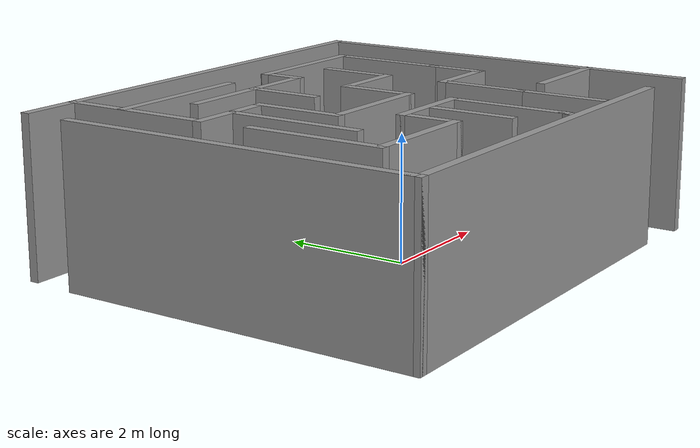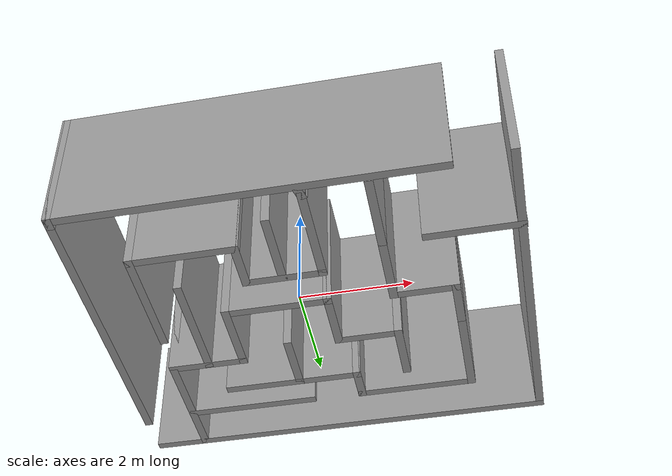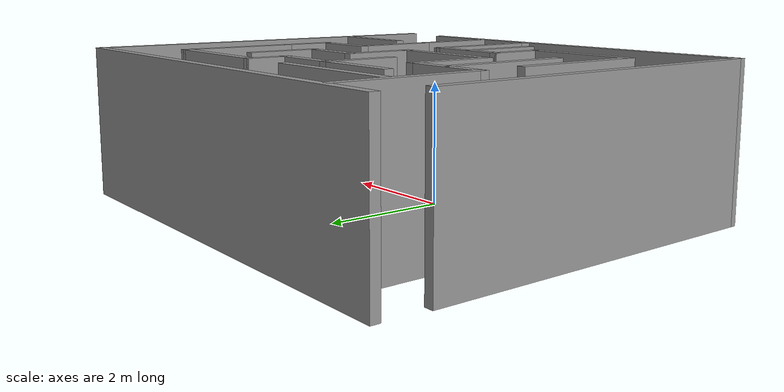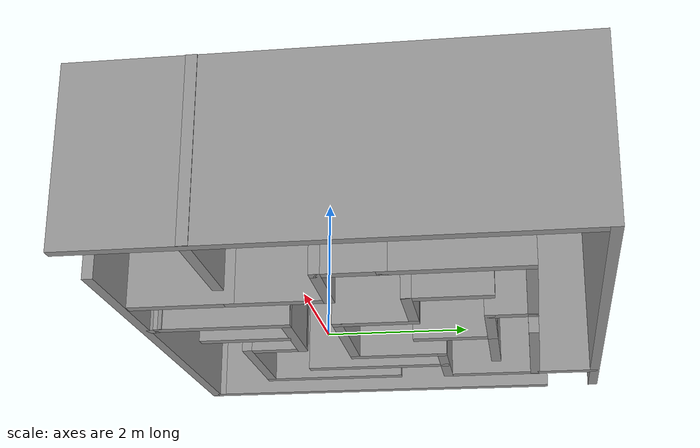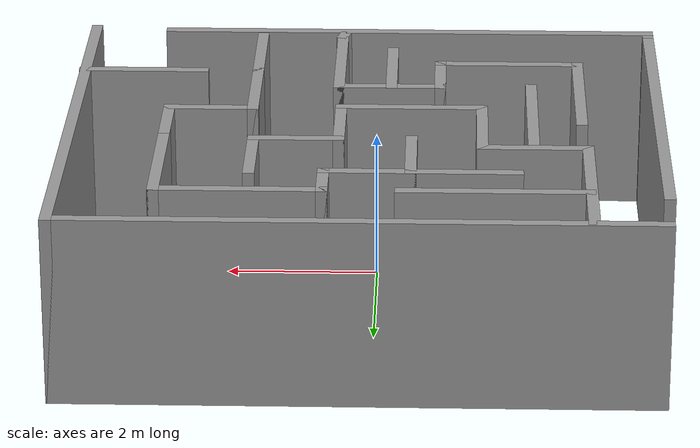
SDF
<?xml version='1.0'?>
<sdf version='1.6'>
  <model name='my_maze_1'>
    <pose frame=''>0.139591 0.622831 0 0 -0 0</pose>
    <link name='Wall_21'>
      <collision name='Wall_21_Collision'>
        <geometry>
          <box>
            <size>7.75 0.15 2.5</size>
          </box>
        </geometry>
        <pose frame=''>0 0 1.25 0 -0 0</pose>
      </collision>
      <visual name='Wall_21_Visual'>
        <pose frame=''>0 0 1.25 0 -0 0</pose>
        <geometry>
          <box>
            <size>7.75 0.15 2.5</size>
          </box>
        </geometry>
        <material>
          <script>
            <uri>file://media/materials/scripts/gazebo.material</uri>
            <name>Gazebo/Grey</name>
          </script>
          <ambient>1 1 1 1</ambient>
        </material>
        <meta>
          <layer>0</layer>
        </meta>
      </visual>
      <pose frame=''>0.020778 3.3 0 0 -0 0</pose>
    </link>
    <link name='Wall_22'>
      <collision name='Wall_22_Collision'>
        <geometry>
          <box>
            <size>6.75 0.15 2.5</size>
          </box>
        </geometry>
        <pose frame=''>0 0 1.25 0 -0 0</pose>
      </collision>
      <visual name='Wall_22_Visual'>
        <pose frame=''>0 0 1.25 0 -0 0</pose>
        <geometry>
          <box>
            <size>6.75 0.15 2.5</size>
          </box>
        </geometry>
        <material>
          <script>
            <uri>file://media/materials/scripts/gazebo.material</uri>
            <name>Gazebo/Grey</name>
          </script>
          <ambient>1 1 1 1</ambient>
        </material>
        <meta>
          <layer>0</layer>
        </meta>
      </visual>
      <pose frame=''>3.82078 0 0 0 -0 -1.5708</pose>
    </link>
    <link name='Wall_24'>
      <collision name='Wall_24_Collision'>
        <geometry>
          <box>
            <size>5.75 0.15 2.5</size>
          </box>
        </geometry>
        <pose frame=''>0 0 1.25 0 -0 0</pose>
      </collision>
      <visual name='Wall_24_Visual'>
        <pose frame=''>0 0 1.25 0 -0 0</pose>
        <geometry>
          <box>
            <size>5.75 0.15 2.5</size>
          </box>
        </geometry>
        <material>
          <script>
            <uri>file://media/materials/scripts/gazebo.material</uri>
            <name>Gazebo/Grey</name>
          </script>
          <ambient>1 1 1 1</ambient>
        </material>
        <meta>
          <layer>0</layer>
        </meta>
      </visual>
      <pose frame=''>-3.83242 -0.324606 0 0 -0 -1.5708</pose>
    </link>
    <link name='Wall_25'>
      <collision name='Wall_25_Collision'>
        <geometry>
          <box>
            <size>0.25 0.15 2.5</size>
          </box>
        </geometry>
        <pose frame=''>0 0 1.25 0 -0 0</pose>
      </collision>
      <visual name='Wall_25_Visual'>
        <pose frame=''>0 0 1.25 0 -0 0</pose>
        <geometry>
          <box>
            <size>0.25 0.15 2.5</size>
          </box>
        </geometry>
        <material>
          <script>
            <uri>file://media/materials/scripts/gazebo.material</uri>
            <name>Gazebo/Grey</name>
          </script>
          <ambient>1 1 1 1</ambient>
        </material>
        <meta>
          <layer>0</layer>
        </meta>
      </visual>
      <pose frame=''>-3.83242 -3.17461 0 0 -0 -1.5708</pose>
    </link>
    <link name='Wall_26'>
      <collision name='Wall_26_Collision'>
        <geometry>
          <box>
            <size>6.75 0.15 2.5</size>
          </box>
        </geometry>
        <pose frame=''>0 0 1.25 0 -0 0</pose>
      </collision>
      <visual name='Wall_26_Visual'>
        <pose frame=''>0 0 1.25 0 -0 0</pose>
        <geometry>
          <box>
            <size>6.75 0.15 2.5</size>
          </box>
        </geometry>
        <material>
          <script>
            <uri>file://media/materials/scripts/gazebo.material</uri>
            <name>Gazebo/Grey</name>
          </script>
          <ambient>1 1 1 1</ambient>
        </material>
        <meta>
          <layer>0</layer>
        </meta>
      </visual>
      <pose frame=''>-0.532423 -3.22461 0 0 -0 0</pose>
    </link>
    <link name='Wall_28'>
      <collision name='Wall_28_Collision'>
        <geometry>
          <box>
            <size>2.5 0.15 2.5</size>
          </box>
        </geometry>
        <pose frame=''>0 0 1.25 0 -0 0</pose>
      </collision>
      <visual name='Wall_28_Visual'>
        <pose frame=''>0 0 1.25 0 -0 0</pose>
        <geometry>
          <box>
            <size>2.5 0.15 2.5</size>
          </box>
        </geometry>
        <material>
          <script>
            <uri>file://media/materials/scripts/gazebo.material</uri>
            <name>Gazebo/Grey</name>
          </script>
          <ambient>1 1 1 1</ambient>
        </material>
        <meta>
          <layer>0</layer>
        </meta>
      </visual>
      <pose frame=''>-2.87481 2.0984 0 0 -0 -1.5708</pose>
    </link>
    <link name='Wall_29'>
      <collision name='Wall_29_Collision'>
        <geometry>
          <box>
            <size>1.5 0.15 2.5</size>
          </box>
        </geometry>
        <pose frame=''>0 0 1.25 0 -0 0</pose>
      </collision>
      <visual name='Wall_29_Visual'>
        <pose frame=''>0 0 1.25 0 -0 0</pose>
        <geometry>
          <box>
            <size>1.5 0.15 2.5</size>
          </box>
        </geometry>
        <material>
          <script>
            <uri>file://media/materials/scripts/gazebo.material</uri>
            <name>Gazebo/Grey</name>
          </script>
          <ambient>1 1 1 1</ambient>
        </material>
        <meta>
          <layer>0</layer>
        </meta>
      </visual>
      <pose frame=''>-2.19982 0.9234 0 0 -0 0</pose>
    </link>
    <link name='Wall_30'>
      <collision name='Wall_30_Collision'>
        <geometry>
          <box>
            <size>1.5 0.15 2.5</size>
          </box>
        </geometry>
        <pose frame=''>0 0 1.25 0 -0 0</pose>
      </collision>
      <visual name='Wall_30_Visual'>
        <pose frame=''>0 0 1.25 0 -0 0</pose>
        <geometry>
          <box>
            <size>1.5 0.15 2.5</size>
          </box>
        </geometry>
        <material>
          <script>
            <uri>file://media/materials/scripts/gazebo.material</uri>
            <name>Gazebo/Grey</name>
          </script>
          <ambient>1 1 1 1</ambient>
        </material>
        <meta>
          <layer>0</layer>
        </meta>
      </visual>
      <pose frame=''>-1.52482 0.2484 0 0 -0 -1.5708</pose>
    </link>
    <link name='Wall_31'>
      <collision name='Wall_31_Collision'>
        <geometry>
          <box>
            <size>2 0.15 2.5</size>
          </box>
        </geometry>
        <pose frame=''>0 0 1.25 0 -0 0</pose>
      </collision>
      <visual name='Wall_31_Visual'>
        <pose frame=''>0 0 1.25 0 -0 0</pose>
        <geometry>
          <box>
            <size>2 0.15 2.5</size>
          </box>
        </geometry>
        <material>
          <script>
            <uri>file://media/materials/scripts/gazebo.material</uri>
            <name>Gazebo/Grey</name>
          </script>
          <ambient>1 1 1 1</ambient>
        </material>
        <meta>
          <layer>0</layer>
        </meta>
      </visual>
      <pose frame=''>-0.599815 -0.4266 0 0 -0 0</pose>
    </link>
    <link name='Wall_32'>
      <collision name='Wall_32_Collision'>
        <geometry>
          <box>
            <size>1.25 0.15 2.5</size>
          </box>
        </geometry>
        <pose frame=''>0 0 1.25 0 -0 0</pose>
      </collision>
      <visual name='Wall_32_Visual'>
        <pose frame=''>0 0 1.25 0 -0 0</pose>
        <geometry>
          <box>
            <size>1.25 0.15 2.5</size>
          </box>
        </geometry>
        <material>
          <script>
            <uri>file://media/materials/scripts/gazebo.material</uri>
            <name>Gazebo/Grey</name>
          </script>
          <ambient>1 1 1 1</ambient>
        </material>
        <meta>
          <layer>0</layer>
        </meta>
      </visual>
      <pose frame=''>0.325185 0.1234 0 0 -0 1.5708</pose>
    </link>
    <link name='Wall_33'>
      <collision name='Wall_33_Collision'>
        <geometry>
          <box>
            <size>1.25 0.15 2.5</size>
          </box>
        </geometry>
        <pose frame=''>0 0 1.25 0 -0 0</pose>
      </collision>
      <visual name='Wall_33_Visual'>
        <pose frame=''>0 0 1.25 0 -0 0</pose>
        <geometry>
          <box>
            <size>1.25 0.15 2.5</size>
          </box>
        </geometry>
        <material>
          <script>
            <uri>file://media/materials/scripts/gazebo.material</uri>
            <name>Gazebo/Grey</name>
          </script>
          <ambient>1 1 1 1</ambient>
        </material>
        <meta>
          <layer>0</layer>
        </meta>
      </visual>
      <pose frame=''>0.875185 0.6734 0 0 -0 0</pose>
    </link>
    <link name='Wall_34'>
      <collision name='Wall_34_Collision'>
        <geometry>
          <box>
            <size>1.25 0.15 2.5</size>
          </box>
        </geometry>
        <pose frame=''>0 0 1.25 0 -0 0</pose>
      </collision>
      <visual name='Wall_34_Visual'>
        <pose frame=''>0 0 1.25 0 -0 0</pose>
        <geometry>
          <box>
            <size>1.25 0.15 2.5</size>
          </box>
        </geometry>
        <material>
          <script>
            <uri>file://media/materials/scripts/gazebo.material</uri>
            <name>Gazebo/Grey</name>
          </script>
          <ambient>1 1 1 1</ambient>
        </material>
        <meta>
          <layer>0</layer>
        </meta>
      </visual>
      <pose frame=''>1.42518 1.2234 0 0 -0 1.5708</pose>
    </link>
    <link name='Wall_36'>
      <collision name='Wall_36_Collision'>
        <geometry>
          <box>
            <size>2.25 0.15 2.5</size>
          </box>
        </geometry>
        <pose frame=''>0 0 1.25 0 -0 0</pose>
      </collision>
      <visual name='Wall_36_Visual'>
        <pose frame=''>0 0 1.25 0 -0 0</pose>
        <geometry>
          <box>
            <size>2.25 0.15 2.5</size>
          </box>
        </geometry>
        <material>
          <script>
            <uri>file://media/materials/scripts/gazebo.material</uri>
            <name>Gazebo/Grey</name>
          </script>
          <ambient>1 1 1 1</ambient>
        </material>
        <meta>
          <layer>0</layer>
        </meta>
      </visual>
      <pose frame=''>-2.82161 -0.968624 0 0 -0 -1.5708</pose>
    </link>
    <link name='Wall_37'>
      <collision name='Wall_37_Collision'>
        <geometry>
          <box>
            <size>2 0.15 2.5</size>
          </box>
        </geometry>
        <pose frame=''>0 0 1.25 0 -0 0</pose>
      </collision>
      <visual name='Wall_37_Visual'>
        <pose frame=''>0 0 1.25 0 -0 0</pose>
        <geometry>
          <box>
            <size>2 0.15 2.5</size>
          </box>
        </geometry>
        <material>
          <script>
            <uri>file://media/materials/scripts/gazebo.material</uri>
            <name>Gazebo/Grey</name>
          </script>
          <ambient>1 1 1 1</ambient>
        </material>
        <meta>
          <layer>0</layer>
        </meta>
      </visual>
      <pose frame=''>-1.89661 -2.01862 0 0 -0 0</pose>
    </link>
    <link name='Wall_38'>
      <collision name='Wall_38_Collision'>
        <geometry>
          <box>
            <size>1 0.15 2.5</size>
          </box>
        </geometry>
        <pose frame=''>0 0 1.25 0 -0 0</pose>
      </collision>
      <visual name='Wall_38_Visual'>
        <pose frame=''>0 0 1.25 0 -0 0</pose>
        <geometry>
          <box>
            <size>1 0.15 2.5</size>
          </box>
        </geometry>
        <material>
          <script>
            <uri>file://media/materials/scripts/gazebo.material</uri>
            <name>Gazebo/Grey</name>
          </script>
          <ambient>1 1 1 1</ambient>
        </material>
        <meta>
          <layer>0</layer>
        </meta>
      </visual>
      <pose frame=''>-0.971615 -1.59362 0 0 -0 1.5708</pose>
    </link>
    <link name='Wall_39'>
      <collision name='Wall_39_Collision'>
        <geometry>
          <box>
            <size>1.5 0.15 2.5</size>
          </box>
        </geometry>
        <pose frame=''>0 0 1.25 0 -0 0</pose>
      </collision>
      <visual name='Wall_39_Visual'>
        <pose frame=''>0 0 1.25 0 -0 0</pose>
        <geometry>
          <box>
            <size>1.5 0.15 2.5</size>
          </box>
        </geometry>
        <material>
          <script>
            <uri>file://media/materials/scripts/gazebo.material</uri>
            <name>Gazebo/Grey</name>
          </script>
          <ambient>1 1 1 1</ambient>
        </material>
        <meta>
          <layer>0</layer>
        </meta>
      </visual>
      <pose frame=''>-0.296615 -1.16862 0 0 -0 0</pose>
    </link>
    <link name='Wall_40'>
      <collision name='Wall_40_Collision'>
        <geometry>
          <box>
            <size>2 0.15 2.5</size>
          </box>
        </geometry>
        <pose frame=''>0 0 1.25 0 -0 0</pose>
      </collision>
      <visual name='Wall_40_Visual'>
        <pose frame=''>0 0 1.25 0 -0 0</pose>
        <geometry>
          <box>
            <size>2 0.15 2.5</size>
          </box>
        </geometry>
        <material>
          <script>
            <uri>file://media/materials/scripts/gazebo.material</uri>
            <name>Gazebo/Grey</name>
          </script>
          <ambient>1 1 1 1</ambient>
        </material>
        <meta>
          <layer>0</layer>
        </meta>
      </visual>
      <pose frame=''>0.378385 -2.09362 0 0 -0 -1.5708</pose>
    </link>
    <link name='Wall_41'>
      <collision name='Wall_41_Collision'>
        <geometry>
          <box>
            <size>0.25 0.15 2.5</size>
          </box>
        </geometry>
        <pose frame=''>0 0 1.25 0 -0 0</pose>
      </collision>
      <visual name='Wall_41_Visual'>
        <pose frame=''>0 0 1.25 0 -0 0</pose>
        <geometry>
          <box>
            <size>0.25 0.15 2.5</size>
          </box>
        </geometry>
        <material>
          <script>
            <uri>file://media/materials/scripts/gazebo.material</uri>
            <name>Gazebo/Grey</name>
          </script>
          <ambient>1 1 1 1</ambient>
        </material>
        <meta>
          <layer>0</layer>
        </meta>
      </visual>
      <pose frame=''>0.365444 -3.06692 0 0 -0 -1.8326</pose>
    </link>
    <link name='Wall_43'>
      <collision name='Wall_43_Collision'>
        <geometry>
          <box>
            <size>1.25 0.15 2.5</size>
          </box>
        </geometry>
        <pose frame=''>0 0 1.25 0 -0 0</pose>
      </collision>
      <visual name='Wall_43_Visual'>
        <pose frame=''>0 0 1.25 0 -0 0</pose>
        <geometry>
          <box>
            <size>1.25 0.15 2.5</size>
          </box>
        </geometry>
        <material>
          <script>
            <uri>file://media/materials/scripts/gazebo.material</uri>
            <name>Gazebo/Grey</name>
          </script>
          <ambient>1 1 1 1</ambient>
        </material>
        <meta>
          <layer>0</layer>
        </meta>
      </visual>
      <pose frame=''>-0.613799 1.18998 0 0 -0 1.5708</pose>
    </link>
    <link name='Wall_44'>
      <collision name='Wall_44_Collision'>
        <geometry>
          <box>
            <size>1.25 0.15 2.5</size>
          </box>
        </geometry>
        <pose frame=''>0 0 1.25 0 -0 0</pose>
      </collision>
      <visual name='Wall_44_Visual'>
        <pose frame=''>0 0 1.25 0 -0 0</pose>
        <geometry>
          <box>
            <size>1.25 0.15 2.5</size>
          </box>
        </geometry>
        <material>
          <script>
            <uri>file://media/materials/scripts/gazebo.material</uri>
            <name>Gazebo/Grey</name>
          </script>
          <ambient>1 1 1 1</ambient>
        </material>
        <meta>
          <layer>0</layer>
        </meta>
      </visual>
      <pose frame=''>-0.063799 1.73998 0 0 -0 0</pose>
    </link>
    <link name='Wall_45'>
      <collision name='Wall_45_Collision'>
        <geometry>
          <box>
            <size>0.75 0.15 2.5</size>
          </box>
        </geometry>
        <pose frame=''>0 0 1.25 0 -0 0</pose>
      </collision>
      <visual name='Wall_45_Visual'>
        <pose frame=''>0 0 1.25 0 -0 0</pose>
        <geometry>
          <box>
            <size>0.75 0.15 2.5</size>
          </box>
        </geometry>
        <material>
          <script>
            <uri>file://media/materials/scripts/gazebo.material</uri>
            <name>Gazebo/Grey</name>
          </script>
          <ambient>1 1 1 1</ambient>
        </material>
        <meta>
          <layer>0</layer>
        </meta>
      </visual>
      <pose frame=''>0.486201 2.03998 0 0 -0 1.5708</pose>
    </link>
    <link name='Wall_46'>
      <collision name='Wall_46_Collision'>
        <geometry>
          <box>
            <size>2.25 0.15 2.5</size>
          </box>
        </geometry>
        <pose frame=''>0 0 1.25 0 -0 0</pose>
      </collision>
      <visual name='Wall_46_Visual'>
        <pose frame=''>0 0 1.25 0 -0 0</pose>
        <geometry>
          <box>
            <size>2.25 0.15 2.5</size>
          </box>
        </geometry>
        <material>
          <script>
            <uri>file://media/materials/scripts/gazebo.material</uri>
            <name>Gazebo/Grey</name>
          </script>
          <ambient>1 1 1 1</ambient>
        </material>
        <meta>
          <layer>0</layer>
        </meta>
      </visual>
      <pose frame=''>1.5362 2.33998 0 0 -0 0</pose>
    </link>
    <link name='Wall_47'>
      <collision name='Wall_47_Collision'>
        <geometry>
          <box>
            <size>2 0.15 2.5</size>
          </box>
        </geometry>
        <pose frame=''>0 0 1.25 0 -0 0</pose>
      </collision>
      <visual name='Wall_47_Visual'>
        <pose frame=''>0 0 1.25 0 -0 0</pose>
        <geometry>
          <box>
            <size>2 0.15 2.5</size>
          </box>
        </geometry>
        <material>
          <script>
            <uri>file://media/materials/scripts/gazebo.material</uri>
            <name>Gazebo/Grey</name>
          </script>
          <ambient>1 1 1 1</ambient>
        </material>
        <meta>
          <layer>0</layer>
        </meta>
      </visual>
      <pose frame=''>2.5862 1.41498 0 0 -0 -1.5708</pose>
    </link>
    <link name='Wall_48'>
      <collision name='Wall_48_Collision'>
        <geometry>
          <box>
            <size>1 0.15 2.5</size>
          </box>
        </geometry>
        <pose frame=''>0 0 1.25 0 -0 0</pose>
      </collision>
      <visual name='Wall_48_Visual'>
        <pose frame=''>0 0 1.25 0 -0 0</pose>
        <geometry>
          <box>
            <size>1 0.15 2.5</size>
          </box>
        </geometry>
        <material>
          <script>
            <uri>file://media/materials/scripts/gazebo.material</uri>
            <name>Gazebo/Grey</name>
          </script>
          <ambient>1 1 1 1</ambient>
        </material>
        <meta>
          <layer>0</layer>
        </meta>
      </visual>
      <pose frame=''>2.5862 0.06498 0 0 -0 -1.5708</pose>
    </link>
    <link name='Wall_49'>
      <collision name='Wall_49_Collision'>
        <geometry>
          <box>
            <size>1.25 0.15 2.5</size>
          </box>
        </geometry>
        <pose frame=''>0 0 1.25 0 -0 0</pose>
      </collision>
      <visual name='Wall_49_Visual'>
        <pose frame=''>0 0 1.25 0 -0 0</pose>
        <geometry>
          <box>
            <size>1.25 0.15 2.5</size>
          </box>
        </geometry>
        <material>
          <script>
            <uri>file://media/materials/scripts/gazebo.material</uri>
            <name>Gazebo/Grey</name>
          </script>
          <ambient>1 1 1 1</ambient>
        </material>
        <meta>
          <layer>0</layer>
        </meta>
      </visual>
      <pose frame=''>2.0362 -0.36002 0 0 -0 3.14159</pose>
    </link>
    <link name='Wall_50'>
      <collision name='Wall_50_Collision'>
        <geometry>
          <box>
            <size>1.5 0.15 2.5</size>
          </box>
        </geometry>
        <pose frame=''>0 0 1.25 0 -0 0</pose>
      </collision>
      <visual name='Wall_50_Visual'>
        <pose frame=''>0 0 1.25 0 -0 0</pose>
        <geometry>
          <box>
            <size>1.5 0.15 2.5</size>
          </box>
        </geometry>
        <material>
          <script>
            <uri>file://media/materials/scripts/gazebo.material</uri>
            <name>Gazebo/Grey</name>
          </script>
          <ambient>1 1 1 1</ambient>
        </material>
        <meta>
          <layer>0</layer>
        </meta>
      </visual>
      <pose frame=''>1.4862 -1.03502 0 0 -0 -1.5708</pose>
    </link>
    <link name='Wall_51'>
      <collision name='Wall_51_Collision'>
        <geometry>
          <box>
            <size>1.5 0.15 2.5</size>
          </box>
        </geometry>
        <pose frame=''>0 0 1.25 0 -0 0</pose>
      </collision>
      <visual name='Wall_51_Visual'>
        <pose frame=''>0 0 1.25 0 -0 0</pose>
        <geometry>
          <box>
            <size>1.5 0.15 2.5</size>
          </box>
        </geometry>
        <material>
          <script>
            <uri>file://media/materials/scripts/gazebo.material</uri>
            <name>Gazebo/Grey</name>
          </script>
          <ambient>1 1 1 1</ambient>
        </material>
        <meta>
          <layer>0</layer>
        </meta>
      </visual>
      <pose frame=''>1.4862 -2.38502 0 0 -0 -1.5708</pose>
    </link>
    <link name='Wall_53'>
      <collision name='Wall_53_Collision'>
        <geometry>
          <box>
            <size>2.5 0.15 2.5</size>
          </box>
        </geometry>
        <pose frame=''>0 0 1.25 0 -0 0</pose>
      </collision>
      <visual name='Wall_53_Visual'>
        <pose frame=''>0 0 1.25 0 -0 0</pose>
        <geometry>
          <box>
            <size>2.5 0.15 2.5</size>
          </box>
        </geometry>
        <material>
          <script>
            <uri>file://media/materials/scripts/gazebo.material</uri>
            <name>Gazebo/Grey</name>
          </script>
          <ambient>1 1 1 1</ambient>
        </material>
        <meta>
          <layer>0</layer>
        </meta>
      </visual>
      <pose frame=''>-1.67321 2.34239 0 0 -0 0</pose>
    </link>
    <link name='Wall_55'>
      <collision name='Wall_55_Collision'>
        <geometry>
          <box>
            <size>1.5 0.15 2.5</size>
          </box>
        </geometry>
        <pose frame=''>0 0 1.25 0 -0 0</pose>
      </collision>
      <visual name='Wall_55_Visual'>
        <pose frame=''>0 0 1.25 0 -0 0</pose>
        <geometry>
          <box>
            <size>1.5 0.15 2.5</size>
          </box>
        </geometry>
        <material>
          <script>
            <uri>file://media/materials/scripts/gazebo.material</uri>
            <name>Gazebo/Grey</name>
          </script>
          <ambient>1 1 1 1</ambient>
        </material>
        <meta>
          <layer>0</layer>
        </meta>
      </visual>
      <pose frame=''>-1.2888 1.73998 0 0 -0 3.14159</pose>
    </link>
    <link name='Wall_57'>
      <collision name='Wall_57_Collision'>
        <geometry>
          <box>
            <size>2.25 0.15 2.5</size>
          </box>
        </geometry>
        <pose frame=''>0 0 1.25 0 -0 0</pose>
      </collision>
      <visual name='Wall_57_Visual'>
        <pose frame=''>0 0 1.25 0 -0 0</pose>
        <geometry>
          <box>
            <size>2.25 0.15 2.5</size>
          </box>
        </geometry>
        <material>
          <script>
            <uri>file://media/materials/scripts/gazebo.material</uri>
            <name>Gazebo/Grey</name>
          </script>
          <ambient>1 1 1 1</ambient>
        </material>
        <meta>
          <layer>0</layer>
        </meta>
      </visual>
      <pose frame=''>-2.18321 -0.144018 0 0 -0 -1.5708</pose>
    </link>
    <link name='Wall_59'>
      <collision name='Wall_59_Collision'>
        <geometry>
          <box>
            <size>1.5 0.15 2.5</size>
          </box>
        </geometry>
        <pose frame=''>0 0 1.25 0 -0 0</pose>
      </collision>
      <visual name='Wall_59_Visual'>
        <pose frame=''>0 0 1.25 0 -0 0</pose>
        <geometry>
          <box>
            <size>1.5 0.15 2.5</size>
          </box>
        </geometry>
        <material>
          <script>
            <uri>file://media/materials/scripts/gazebo.material</uri>
            <name>Gazebo/Grey</name>
          </script>
          <ambient>1 1 1 1</ambient>
        </material>
        <meta>
          <layer>0</layer>
        </meta>
      </visual>
      <pose frame=''>-0.321196 -1.84383 0 0 -0 -1.5708</pose>
    </link>
    <link name='Wall_61'>
      <collision name='Wall_61_Collision'>
        <geometry>
          <box>
            <size>1.75 0.15 2.5</size>
          </box>
        </geometry>
        <pose frame=''>0 0 1.25 0 -0 0</pose>
      </collision>
      <visual name='Wall_61_Visual'>
        <pose frame=''>0 0 1.25 0 -0 0</pose>
        <geometry>
          <box>
            <size>1.75 0.15 2.5</size>
          </box>
        </geometry>
        <material>
          <script>
            <uri>file://media/materials/scripts/gazebo.material</uri>
            <name>Gazebo/Grey</name>
          </script>
          <ambient>1 1 1 1</ambient>
        </material>
        <meta>
          <layer>0</layer>
        </meta>
      </visual>
      <pose frame=''>3.03242 -1.70084 0 0 -0 0</pose>
    </link>
    <static>1</static>
  </model>
</sdf>
